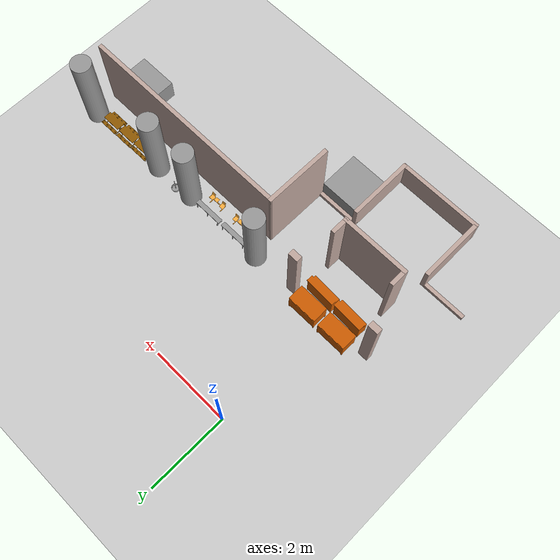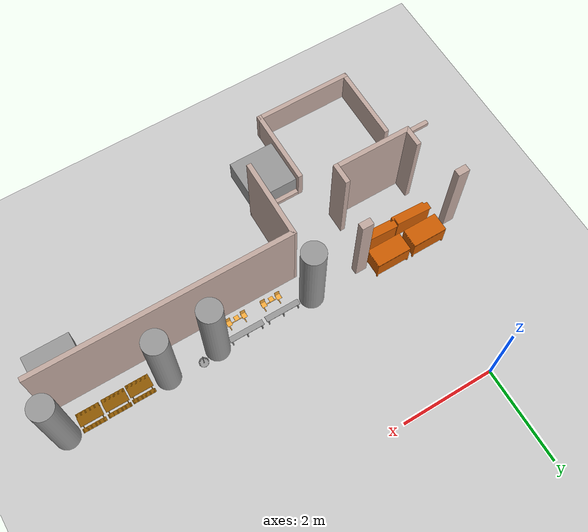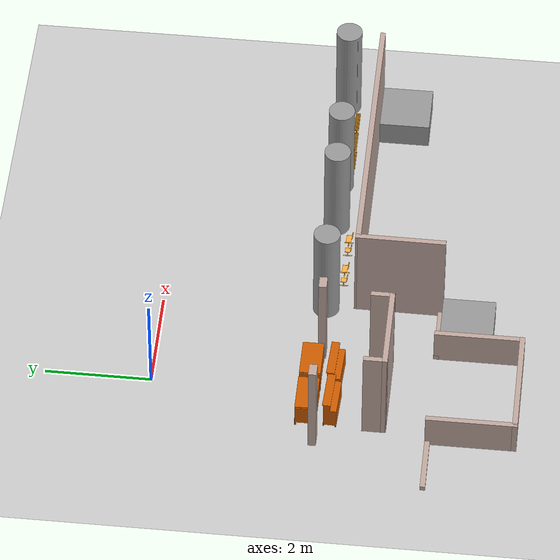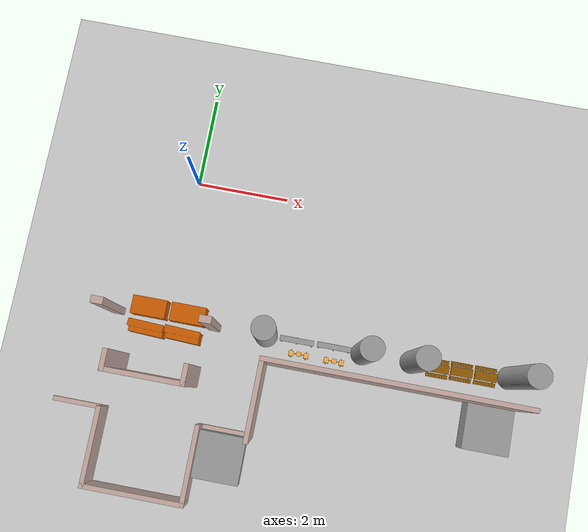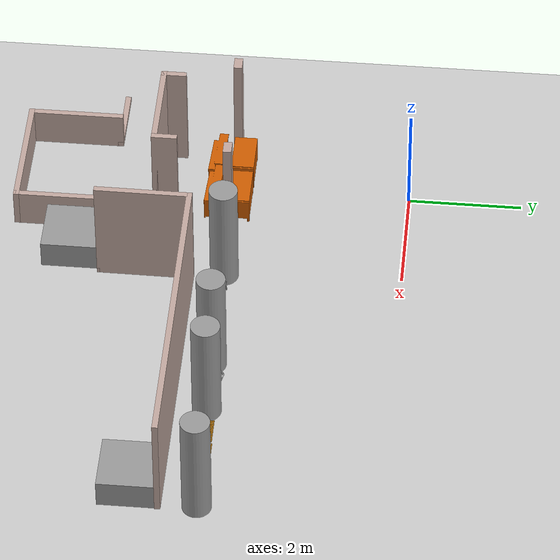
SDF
<sdf version="1.6">
 <world name="default">
  <model name="ground_plane">
   <static>1</static>
   <link name="link">
    <collision name="collision">
     <geometry><plane><normal>0 0 1</normal><size>100 100</size></plane></geometry>
     <surface>
      <contact><collide_bitmask>65535</collide_bitmask></contact>
      <friction><ode><mu>100</mu><mu2>50</mu2></ode></friction>
     </surface>
    </collision>
    <visual name="visual">
     <cast_shadows>0</cast_shadows>
     <geometry><plane><normal>0 0 1</normal><size>100 100</size></plane></geometry>
     <material>
      <script><uri>file://media/materials/scripts/gazebo.material</uri><name>Gazebo/Grey</name></script>
     </material>
    </visual>
   </link>
  </model>
  <model name="gedung_p">
   <pose>2.96636 -2.09069 0 0 -0 0</pose>
   <link name="Wall_191">
    <collision name="Wall_191_Collision">
     <geometry><box><size>5.44985 0.1 2</size></box></geometry>
     <pose>0 0 1 0 -0 0</pose>
    </collision>
    <visual name="Wall_191_Visual">
     <pose>0 0 1 0 -0 0</pose>
     <geometry><box><size>5.44985 0.1 2</size></box></geometry>
     <material>
      <script><uri>file://media/materials/scripts/gazebo.material</uri><name>Gazebo/Grey</name></script>
      <ambient>0.760784 0.662745 0.627451 1</ambient>
     </material>
     <meta><layer>0</layer></meta>
    </visual>
    <pose>1.92549 -1.5742 0 0 -0 3.14159</pose>
   </link>
   <link name="Wall_192">
    <collision name="Wall_192_Collision">
     <geometry><box><size>1.70004 0.1 2</size></box></geometry>
     <pose>0 0 1 0 -0 0</pose>
    </collision>
    <visual name="Wall_192_Visual">
     <pose>0 0 1 0 -0 0</pose>
     <geometry><box><size>1.70004 0.1 2</size></box></geometry>
     <material>
      <script><uri>file://media/materials/scripts/gazebo.material</uri><name>Gazebo/Grey</name></script>
      <ambient>0.760784 0.662745 0.627451 1</ambient>
     </material>
     <meta><layer>0</layer></meta>
    </visual>
    <pose>-0.755012 -2.37419 0 0 -0 -1.57767</pose>
   </link>
   <link name="Wall_194">
    <collision name="Wall_194_Collision">
     <geometry><box><size>1.2 0.1 0.1</size></box></geometry>
     <pose>0 0 0.05 0 -0 0</pose>
    </collision>
    <visual name="Wall_194_Visual">
     <pose>0 0 0.05 0 -0 0</pose>
     <geometry><box><size>1.2 0.1 0.1</size></box></geometry>
     <material>
      <script><uri>file://media/materials/scripts/gazebo.material</uri><name>Gazebo/Grey</name></script>
      <ambient>0.760784 0.662745 0.627451 1</ambient>
     </material>
     <meta><layer>0</layer></meta>
    </visual>
    <pose>-1.31051 -3.1742 0 0 -0 3.14159</pose>
   </link>
   <link name="Wall_195">
    <collision name="Wall_195_Collision">
     <geometry><box><size>1.7 0.1 0.7</size></box></geometry>
     <pose>0 0 0.35 0 -0 0</pose>
    </collision>
    <visual name="Wall_195_Visual">
     <pose>0 0 0.35 0 -0 0</pose>
     <geometry><box><size>1.7 0.1 0.7</size></box></geometry>
     <material>
      <script><uri>file://media/materials/scripts/gazebo.material</uri><name>Gazebo/Grey</name></script>
      <ambient>0.760784 0.662745 0.627451 1</ambient>
     </material>
     <meta><layer>0</layer></meta>
    </visual>
    <pose>-1.86051 -3.97419 0 0 -0 -1.5708</pose>
   </link>
   <link name="Wall_196">
    <collision name="Wall_196_Collision">
     <geometry><box><size>2.2 0.1 0.7</size></box></geometry>
     <pose>0 0 0.35 0 -0 0</pose>
    </collision>
    <visual name="Wall_196_Visual">
     <pose>0 0 0.35 0 -0 0</pose>
     <geometry><box><size>2.2 0.1 0.7</size></box></geometry>
     <material>
      <script><uri>file://media/materials/scripts/gazebo.material</uri><name>Gazebo/Grey</name></script>
      <ambient>0.760784 0.662745 0.627451 1</ambient>
     </material>
     <meta><layer>0</layer></meta>
    </visual>
    <pose>-2.91051 -4.77419 0 0 -0 3.14159</pose>
   </link>
   <link name="Wall_197">
    <collision name="Wall_197_Collision">
     <geometry><box><size>1.7 0.1 0.7</size></box></geometry>
     <pose>0 0 0.35 0 -0 0</pose>
    </collision>
    <visual name="Wall_197_Visual">
     <pose>0 0 0.35 0 -0 0</pose>
     <geometry><box><size>1.7 0.1 0.7</size></box></geometry>
     <material>
      <script><uri>file://media/materials/scripts/gazebo.material</uri><name>Gazebo/Grey</name></script>
      <ambient>0.760784 0.662745 0.627451 1</ambient>
     </material>
     <meta><layer>0</layer></meta>
    </visual>
    <pose>-3.96051 -3.97419 0 0 -0 1.5708</pose>
   </link>
   <link name="Wall_198">
    <collision name="Wall_198_Collision">
     <geometry><box><size>1.2 0.1 0.1</size></box></geometry>
     <pose>0 0 0.05 0 -0 0</pose>
    </collision>
    <visual name="Wall_198_Visual">
     <pose>0 0 0.05 0 -0 0</pose>
     <geometry><box><size>1.2 0.1 0.1</size></box></geometry>
     <material>
      <script><uri>file://media/materials/scripts/gazebo.material</uri><name>Gazebo/Grey</name></script>
      <ambient>0.760784 0.662745 0.627451 1</ambient>
     </material>
     <meta><layer>0</layer></meta>
    </visual>
    <pose>-4.51051 -3.1742 0 0 -0 3.14159</pose>
   </link>
   <link name="Wall_201">
    <collision name="Wall_201_Collision">
     <geometry><box><size>0.45 0.1 2</size></box></geometry>
     <pose>0 0 1 0 -0 0</pose>
    </collision>
    <visual name="Wall_201_Visual">
     <pose>0 0 1 0 -0 0</pose>
     <geometry><box><size>0.45 0.1 2</size></box></geometry>
     <material>
      <script><uri>file://media/materials/scripts/gazebo.material</uri><name>Gazebo/Grey</name></script>
      <ambient>0.760784 0.662745 0.627451 1</ambient>
     </material>
     <meta><layer>0</layer></meta>
    </visual>
    <pose>-3.75851 -2.16319 0 0 -0 -1.5708</pose>
   </link>
   <link name="Wall_202">
    <collision name="Wall_202_Collision">
     <geometry><box><size>1.7 0.1 2</size></box></geometry>
     <pose>0 0 1 0 -0 0</pose>
    </collision>
    <visual name="Wall_202_Visual">
     <pose>0 0 1 0 -0 0</pose>
     <geometry><box><size>1.7 0.1 2</size></box></geometry>
     <material>
      <script><uri>file://media/materials/scripts/gazebo.material</uri><name>Gazebo/Grey</name></script>
      <ambient>0.760784 0.662745 0.627451 1</ambient>
     </material>
     <meta><layer>0</layer></meta>
    </visual>
    <pose>-2.95851 -2.33819 0 0 -0 0</pose>
   </link>
   <link name="Wall_203">
    <collision name="Wall_203_Collision">
     <geometry><box><size>0.450476 0.1 2</size></box></geometry>
     <pose>0 0 1 0 -0 0</pose>
    </collision>
    <visual name="Wall_203_Visual">
     <pose>0 0 1 0 -0 0</pose>
     <geometry><box><size>0.450476 0.1 2</size></box></geometry>
     <material>
      <script><uri>file://media/materials/scripts/gazebo.material</uri><name>Gazebo/Grey</name></script>
      <ambient>0.760784 0.662745 0.627451 1</ambient>
     </material>
     <meta><layer>0</layer></meta>
    </visual>
    <pose>-2.15851 -2.16319 0 0 -0 1.5708</pose>
   </link>
   <link name="Wall_233">
    <collision name="Wall_233_Collision">
     <geometry><box><size>0.260396 0.2 2</size></box></geometry>
     <pose>0 0 1 0 -0 0</pose>
    </collision>
    <visual name="Wall_233_Visual">
     <pose>0 0 1 0 -0 0</pose>
     <geometry><box><size>0.260396 0.2 2</size></box></geometry>
     <material>
      <script><uri>file://media/materials/scripts/gazebo.material</uri><name>Gazebo/Grey</name></script>
      <ambient>0.760784 0.662745 0.627451 1</ambient>
     </material>
     <meta><layer>0</layer></meta>
    </visual>
    <pose>-0.860454 -1.01152 0 0 -0 0.09066</pose>
   </link>
   <link name="Wall_235">
    <collision name="Wall_235_Collision">
     <geometry><box><size>0.298575 0.2 2</size></box></geometry>
     <pose>0 0 1 0 -0 0</pose>
    </collision>
    <visual name="Wall_235_Visual">
     <pose>0 0 1 0 -0 0</pose>
     <geometry><box><size>0.298575 0.2 2</size></box></geometry>
     <material>
      <script><uri>file://media/materials/scripts/gazebo.material</uri><name>Gazebo/Grey</name></script>
      <ambient>0.760784 0.662745 0.627451 1</ambient>
     </material>
     <meta><layer>0</layer></meta>
    </visual>
    <pose>1.29119 -1.02245 0 0 -0 -0.055499</pose>
   </link>
   <link name="Wall_237">
    <collision name="Wall_237_Collision">
     <geometry><box><size>0.292956 0.2 2</size></box></geometry>
     <pose>0 0 1 0 -0 0</pose>
    </collision>
    <visual name="Wall_237_Visual">
     <pose>0 0 1 0 -0 0</pose>
     <geometry><box><size>0.292956 0.2 2</size></box></geometry>
     <material>
      <script><uri>file://media/materials/scripts/gazebo.material</uri><name>Gazebo/Grey</name></script>
      <ambient>0.760784 0.662745 0.627451 1</ambient>
     </material>
     <meta><layer>0</layer></meta>
    </visual>
    <pose>2.36565 -1.02792 0 0 -0 -3.08284</pose>
   </link>
   <link name="Wall_239">
    <collision name="Wall_239_Collision">
     <geometry><box><size>0.309905 0.2 2</size></box></geometry>
     <pose>0 0 1 0 -0 0</pose>
    </collision>
    <visual name="Wall_239_Visual">
     <pose>0 0 1 0 -0 0</pose>
     <geometry><box><size>0.309905 0.2 2</size></box></geometry>
     <material>
      <script><uri>file://media/materials/scripts/gazebo.material</uri><name>Gazebo/Grey</name></script>
      <ambient>0.760784 0.662745 0.627451 1</ambient>
     </material>
     <meta><layer>0</layer></meta>
    </visual>
    <pose>4.51183 -1.00878 0 0 -0 0</pose>
   </link>
   <link name="Wall_285">
    <collision name="Wall_285_Collision">
     <geometry><box><size>0.25 0.15 2</size></box></geometry>
     <pose>0 0 1 0 -0 0</pose>
    </collision>
    <visual name="Wall_285_Visual">
     <pose>0 0 1 0 -0 0</pose>
     <geometry><box><size>0.25 0.15 2</size></box></geometry>
     <material>
      <script><uri>file://media/materials/scripts/gazebo.material</uri><name>Gazebo/Grey</name></script>
      <ambient>0.760784 0.662745 0.627451 1</ambient>
     </material>
     <meta><layer>0</layer></meta>
    </visual>
    <pose>-4.12951 -1.05419 0 0 -0 0</pose>
   </link>
   <link name="Wall_287">
    <collision name="Wall_287_Collision">
     <geometry><box><size>0.25 0.15 2</size></box></geometry>
     <pose>0 0 1 0 -0 0</pose>
    </collision>
    <visual name="Wall_287_Visual">
     <pose>0 0 1 0 -0 0</pose>
     <geometry><box><size>0.25 0.15 2</size></box></geometry>
     <material>
      <script><uri>file://media/materials/scripts/gazebo.material</uri><name>Gazebo/Grey</name></script>
      <ambient>0.760784 0.662745 0.627451 1</ambient>
     </material>
     <meta><layer>0</layer></meta>
    </visual>
    <pose>-1.97751 -1.0352 0 0 -0 0</pose>
   </link>
   <static>1</static>
  </model>
  <model name="tiang_besar_21">
   <link name="link_0">
    <inertial>
     <mass>1</mass>
     <inertia>
      <ixx>0.166667</ixx>
      <ixy>0</ixy>
      <ixz>0</ixz>
      <iyy>0.166667</iyy>
      <iyz>0</iyz>
      <izz>0.166667</izz>
     </inertia>
    </inertial>
    <pose>0.080543 -0.031124 0 0 -0 0</pose>
    <visual name="visual">
     <geometry>
      <mesh><uri>/home/thardi/Gazebo Objek/cylinder sedang.dae</uri><scale>1 1 1.15</scale></mesh>
     </geometry>
     <material>
      <lighting>1</lighting>
      <script><uri>file://media/materials/scripts/gazebo.material</uri><name>Gazebo/Grey</name></script>
      <shader type="vertex"><normal_map>__default__</normal_map></shader>
      <ambient>0.3 0.3 0.3 1</ambient>
      <diffuse>0.7 0.7 0.7 1</diffuse>
      <specular>0.01 0.01 0.01 1</specular>
      <emissive>0 0 0 1</emissive>
     </material>
    </visual>
    <collision name="collision">
     <geometry>
      <mesh><uri>/home/thardi/Gazebo Objek/cylinder sedang.dae</uri><scale>1 1 1.15</scale></mesh>
     </geometry>
     <surface>
      <friction>
       <ode><mu>1.15</mu><mu2>1</mu2><fdir1>0 0 0</fdir1><slip1>0</slip1><slip2>0</slip2></ode>
       <torsional>
        <coefficient>1</coefficient>
        <patch_radius>0</patch_radius>
        <surface_radius>0</surface_radius>
        <use_patch_radius>1</use_patch_radius>
        <ode><slip>0</slip></ode>
       </torsional>
      </friction>
      <bounce><restitution_coefficient>0</restitution_coefficient><threshold>1e+06</threshold></bounce>
      <contact>
       <collide_without_contact>0</collide_without_contact>
       <collide_without_contact_bitmask>1</collide_without_contact_bitmask>
       <collide_bitmask>1</collide_bitmask>
       <ode>
        <soft_cfm>0</soft_cfm>
        <soft_erp>0.2</soft_erp>
        <kp>1e+13</kp>
        <kd>1</kd>
        <max_vel>0.01</max_vel>
        <min_depth>0</min_depth>
       </ode>
       <bullet>
        <split_impulse>1</split_impulse>
        <split_impulse_penetration_threshold>-0.01</split_impulse_penetration_threshold>
        <soft_cfm>0</soft_cfm>
        <soft_erp>0.2</soft_erp>
        <kp>1e+13</kp>
        <kd>1</kd>
       </bullet>
      </contact>
     </surface>
    </collision>
   </link>
   <static>1</static>
   <pose>2.05354 -3.05864 0 0 -0 0</pose>
  </model>
  <model name="tiang_besar_40">
   <link name="link_0">
    <inertial>
     <mass>1</mass>
     <inertia>
      <ixx>0.166667</ixx>
      <ixy>0</ixy>
      <ixz>0</ixz>
      <iyy>0.166667</iyy>
      <iyz>0</iyz>
      <izz>0.166667</izz>
     </inertia>
    </inertial>
    <pose>0.080543 -0.031124 0 0 -0 0</pose>
    <visual name="visual">
     <geometry>
      <mesh><uri>/home/thardi/Gazebo Objek/cylinder sedang.dae</uri><scale>1 1 1.15</scale></mesh>
     </geometry>
     <material>
      <lighting>1</lighting>
      <script><uri>file://media/materials/scripts/gazebo.material</uri><name>Gazebo/Grey</name></script>
      <shader type="vertex"><normal_map>__default__</normal_map></shader>
      <ambient>0.3 0.3 0.3 1</ambient>
      <diffuse>0.7 0.7 0.7 1</diffuse>
      <specular>0.01 0.01 0.01 1</specular>
      <emissive>0 0 0 1</emissive>
     </material>
    </visual>
    <collision name="collision">
     <geometry>
      <mesh><uri>/home/thardi/Gazebo Objek/cylinder sedang.dae</uri><scale>1 1 1.15</scale></mesh>
     </geometry>
     <surface>
      <friction>
       <ode><mu>1.15</mu><mu2>1</mu2><fdir1>0 0 0</fdir1><slip1>0</slip1><slip2>0</slip2></ode>
       <torsional>
        <coefficient>1</coefficient>
        <patch_radius>0</patch_radius>
        <surface_radius>0</surface_radius>
        <use_patch_radius>1</use_patch_radius>
        <ode><slip>0</slip></ode>
       </torsional>
      </friction>
      <bounce><restitution_coefficient>0</restitution_coefficient><threshold>1e+06</threshold></bounce>
      <contact>
       <collide_without_contact>0</collide_without_contact>
       <collide_without_contact_bitmask>1</collide_without_contact_bitmask>
       <collide_bitmask>1</collide_bitmask>
       <ode>
        <soft_cfm>0</soft_cfm>
        <soft_erp>0.2</soft_erp>
        <kp>1e+13</kp>
        <kd>1</kd>
        <max_vel>0.01</max_vel>
        <min_depth>0</min_depth>
       </ode>
       <bullet>
        <split_impulse>1</split_impulse>
        <split_impulse_penetration_threshold>-0.01</split_impulse_penetration_threshold>
        <soft_cfm>0</soft_cfm>
        <soft_erp>0.2</soft_erp>
        <kp>1e+13</kp>
        <kd>1</kd>
       </bullet>
      </contact>
     </surface>
    </collision>
   </link>
   <static>1</static>
   <pose>4.18654 -3.05832 0 0 -0 0</pose>
  </model>
  <model name="tiang_besar_41">
   <link name="link_0">
    <inertial>
     <mass>1</mass>
     <inertia>
      <ixx>0.166667</ixx>
      <ixy>0</ixy>
      <ixz>0</ixz>
      <iyy>0.166667</iyy>
      <iyz>0</iyz>
      <izz>0.166667</izz>
     </inertia>
    </inertial>
    <pose>0.080543 -0.031124 0 0 -0 0</pose>
    <visual name="visual">
     <geometry>
      <mesh><uri>/home/thardi/Gazebo Objek/cylinder sedang.dae</uri><scale>1 1 1.15</scale></mesh>
     </geometry>
     <material>
      <lighting>1</lighting>
      <script><uri>file://media/materials/scripts/gazebo.material</uri><name>Gazebo/Grey</name></script>
      <shader type="vertex"><normal_map>__default__</normal_map></shader>
      <ambient>0.3 0.3 0.3 1</ambient>
      <diffuse>0.7 0.7 0.7 1</diffuse>
      <specular>0.01 0.01 0.01 1</specular>
      <emissive>0 0 0 1</emissive>
     </material>
    </visual>
    <collision name="collision">
     <geometry>
      <mesh><uri>/home/thardi/Gazebo Objek/cylinder sedang.dae</uri><scale>1 1 1.15</scale></mesh>
     </geometry>
     <surface>
      <friction>
       <ode><mu>1.15</mu><mu2>1</mu2><fdir1>0 0 0</fdir1><slip1>0</slip1><slip2>0</slip2></ode>
       <torsional>
        <coefficient>1</coefficient>
        <patch_radius>0</patch_radius>
        <surface_radius>0</surface_radius>
        <use_patch_radius>1</use_patch_radius>
        <ode><slip>0</slip></ode>
       </torsional>
      </friction>
      <bounce><restitution_coefficient>0</restitution_coefficient><threshold>1e+06</threshold></bounce>
      <contact>
       <collide_without_contact>0</collide_without_contact>
       <collide_without_contact_bitmask>1</collide_without_contact_bitmask>
       <collide_bitmask>1</collide_bitmask>
       <ode>
        <soft_cfm>0</soft_cfm>
        <soft_erp>0.2</soft_erp>
        <kp>1e+13</kp>
        <kd>1</kd>
        <max_vel>0.01</max_vel>
        <min_depth>0</min_depth>
       </ode>
       <bullet>
        <split_impulse>1</split_impulse>
        <split_impulse_penetration_threshold>-0.01</split_impulse_penetration_threshold>
        <soft_cfm>0</soft_cfm>
        <soft_erp>0.2</soft_erp>
        <kp>1e+13</kp>
        <kd>1</kd>
       </bullet>
      </contact>
     </surface>
    </collision>
   </link>
   <static>1</static>
   <pose>5.27354 -3.03883 0 0 -0 0</pose>
  </model>
  <model name="tiang_besar_45">
   <link name="link_0">
    <inertial>
     <mass>1</mass>
     <inertia>
      <ixx>0.166667</ixx>
      <ixy>0</ixy>
      <ixz>0</ixz>
      <iyy>0.166667</iyy>
      <iyz>0</iyz>
      <izz>0.166667</izz>
     </inertia>
    </inertial>
    <pose>0.080543 -0.031124 0 0 -0 0</pose>
    <visual name="visual">
     <geometry>
      <mesh><uri>/home/thardi/Gazebo Objek/cylinder sedang.dae</uri><scale>1 1 1.15</scale></mesh>
     </geometry>
     <material>
      <lighting>1</lighting>
      <script><uri>file://media/materials/scripts/gazebo.material</uri><name>Gazebo/Grey</name></script>
      <shader type="vertex"><normal_map>__default__</normal_map></shader>
      <ambient>0.3 0.3 0.3 1</ambient>
      <diffuse>0.7 0.7 0.7 1</diffuse>
      <specular>0.01 0.01 0.01 1</specular>
      <emissive>0 0 0 1</emissive>
     </material>
    </visual>
    <collision name="collision">
     <geometry>
      <mesh><uri>/home/thardi/Gazebo Objek/cylinder sedang.dae</uri><scale>1 1 1.15</scale></mesh>
     </geometry>
     <surface>
      <friction>
       <ode><mu>1.15</mu><mu2>1</mu2><fdir1>0 0 0</fdir1><slip1>0</slip1><slip2>0</slip2></ode>
       <torsional>
        <coefficient>1</coefficient>
        <patch_radius>0</patch_radius>
        <surface_radius>0</surface_radius>
        <use_patch_radius>1</use_patch_radius>
        <ode><slip>0</slip></ode>
       </torsional>
      </friction>
      <bounce><restitution_coefficient>0</restitution_coefficient><threshold>1e+06</threshold></bounce>
      <contact>
       <collide_without_contact>0</collide_without_contact>
       <collide_without_contact_bitmask>1</collide_without_contact_bitmask>
       <collide_bitmask>1</collide_bitmask>
       <ode>
        <soft_cfm>0</soft_cfm>
        <soft_erp>0.2</soft_erp>
        <kp>1e+13</kp>
        <kd>1</kd>
        <max_vel>0.01</max_vel>
        <min_depth>0</min_depth>
       </ode>
       <bullet>
        <split_impulse>1</split_impulse>
        <split_impulse_penetration_threshold>-0.01</split_impulse_penetration_threshold>
        <soft_cfm>0</soft_cfm>
        <soft_erp>0.2</soft_erp>
        <kp>1e+13</kp>
        <kd>1</kd>
       </bullet>
      </contact>
     </surface>
    </collision>
   </link>
   <static>1</static>
   <pose>7.42013 -2.988 0 0 -0 0</pose>
  </model>
  <model name="kursi_putih_7">
   <link name="link_3">
    <inertial>
     <mass>1</mass>
     <inertia>
      <ixx>0.166667</ixx>
      <ixy>0</ixy>
      <ixz>0</ixz>
      <iyy>0.166667</iyy>
      <iyz>0</iyz>
      <izz>0.166667</izz>
     </inertia>
    </inertial>
    <visual name="visual">
     <geometry>
      <mesh><uri>/home/thardi/Gazebo Objek/kursi putih.dae</uri><scale>0.15 0.15 0.15</scale></mesh>
     </geometry>
     <material>
      <lighting>1</lighting>
      <script><uri>file://media/materials/scripts/gazebo.material</uri><name>Gazebo/Grey</name></script>
      <shader type="vertex"><normal_map>__default__</normal_map></shader>
      <ambient>1 1 1 1</ambient>
      <diffuse>1 1 1 1</diffuse>
      <specular>1 1 1 1</specular>
      <emissive>1 1 1 1</emissive>
     </material>
    </visual>
    <collision name="collision">
     <geometry>
      <mesh><uri>/home/thardi/Gazebo Objek/kursi putih.dae</uri><scale>0.15 0.15 0.15</scale></mesh>
     </geometry>
     <surface>
      <friction>
       <ode><mu>1</mu><mu2>1</mu2><fdir1>0 0 0</fdir1><slip1>0</slip1><slip2>0</slip2></ode>
       <torsional>
        <coefficient>1</coefficient>
        <patch_radius>0</patch_radius>
        <surface_radius>0</surface_radius>
        <use_patch_radius>1</use_patch_radius>
        <ode><slip>0</slip></ode>
       </torsional>
      </friction>
      <bounce><restitution_coefficient>0</restitution_coefficient><threshold>1e+06</threshold></bounce>
      <contact>
       <collide_without_contact>0</collide_without_contact>
       <collide_without_contact_bitmask>1</collide_without_contact_bitmask>
       <collide_bitmask>1</collide_bitmask>
       <ode>
        <soft_cfm>0</soft_cfm>
        <soft_erp>0.2</soft_erp>
        <kp>1e+13</kp>
        <kd>1</kd>
        <max_vel>0.01</max_vel>
        <min_depth>0</min_depth>
       </ode>
       <bullet>
        <split_impulse>1</split_impulse>
        <split_impulse_penetration_threshold>-0.01</split_impulse_penetration_threshold>
        <soft_cfm>0</soft_cfm>
        <soft_erp>0.2</soft_erp>
        <kp>1e+13</kp>
        <kd>1</kd>
       </bullet>
      </contact>
     </surface>
    </collision>
   </link>
   <static>1</static>
   <pose>2.81307 -3.08052 0 0 -0 0</pose>
  </model>
  <model name="kursi_putih_8">
   <link name="link_3">
    <inertial>
     <mass>1</mass>
     <inertia>
      <ixx>0.166667</ixx>
      <ixy>0</ixy>
      <ixz>0</ixz>
      <iyy>0.166667</iyy>
      <iyz>0</iyz>
      <izz>0.166667</izz>
     </inertia>
    </inertial>
    <visual name="visual">
     <geometry>
      <mesh><uri>/home/thardi/Gazebo Objek/kursi putih.dae</uri><scale>0.15 0.15 0.15</scale></mesh>
     </geometry>
     <material>
      <lighting>1</lighting>
      <script><uri>file://media/materials/scripts/gazebo.material</uri><name>Gazebo/Grey</name></script>
      <shader type="vertex"><normal_map>__default__</normal_map></shader>
      <ambient>1 1 1 1</ambient>
      <diffuse>1 1 1 1</diffuse>
      <specular>1 1 1 1</specular>
      <emissive>1 1 1 1</emissive>
     </material>
    </visual>
    <collision name="collision">
     <geometry>
      <mesh><uri>/home/thardi/Gazebo Objek/kursi putih.dae</uri><scale>0.15 0.15 0.15</scale></mesh>
     </geometry>
     <surface>
      <friction>
       <ode><mu>1</mu><mu2>1</mu2><fdir1>0 0 0</fdir1><slip1>0</slip1><slip2>0</slip2></ode>
       <torsional>
        <coefficient>1</coefficient>
        <patch_radius>0</patch_radius>
        <surface_radius>0</surface_radius>
        <use_patch_radius>1</use_patch_radius>
        <ode><slip>0</slip></ode>
       </torsional>
      </friction>
      <bounce><restitution_coefficient>0</restitution_coefficient><threshold>1e+06</threshold></bounce>
      <contact>
       <collide_without_contact>0</collide_without_contact>
       <collide_without_contact_bitmask>1</collide_without_contact_bitmask>
       <collide_bitmask>1</collide_bitmask>
       <ode>
        <soft_cfm>0</soft_cfm>
        <soft_erp>0.2</soft_erp>
        <kp>1e+13</kp>
        <kd>1</kd>
        <max_vel>0.01</max_vel>
        <min_depth>0</min_depth>
       </ode>
       <bullet>
        <split_impulse>1</split_impulse>
        <split_impulse_penetration_threshold>-0.01</split_impulse_penetration_threshold>
        <soft_cfm>0</soft_cfm>
        <soft_erp>0.2</soft_erp>
        <kp>1e+13</kp>
        <kd>1</kd>
       </bullet>
      </contact>
     </surface>
    </collision>
   </link>
   <static>1</static>
   <pose>3.63309 -3.06913 0 0 -0 0</pose>
  </model>
  <model name="kursi_sambung_2_3">
   <link name="link_4">
    <inertial>
     <mass>1</mass>
     <inertia>
      <ixx>0.166667</ixx>
      <ixy>0</ixy>
      <ixz>0</ixz>
      <iyy>0.166667</iyy>
      <iyz>0</iyz>
      <izz>0.166667</izz>
     </inertia>
    </inertial>
    <visual name="visual">
     <geometry>
      <mesh><uri>/home/thardi/Gazebo Objek/kursi sambung 2.dae</uri><scale>0.07 0.07 0.07</scale></mesh>
     </geometry>
     <material>
      <lighting>1</lighting>
      <script><uri>file://media/materials/scripts/gazebo.material</uri><name>Gazebo/Grey</name></script>
      <shader type="vertex"><normal_map>__default__</normal_map></shader>
      <ambient>0.988 0.686 0.243 1</ambient>
      <diffuse>0.988 0.686 0.243 1</diffuse>
      <specular>0.988 0.686 0.243 1</specular>
      <emissive>0.988 0.686 0.243 1</emissive>
     </material>
    </visual>
    <collision name="collision">
     <geometry>
      <mesh><uri>/home/thardi/Gazebo Objek/kursi sambung 2.dae</uri><scale>0.07 0.07 0.07</scale></mesh>
     </geometry>
     <surface>
      <friction>
       <ode><mu>1</mu><mu2>1</mu2><fdir1>0 0 0</fdir1><slip1>0</slip1><slip2>0</slip2></ode>
       <torsional>
        <coefficient>1</coefficient>
        <patch_radius>0</patch_radius>
        <surface_radius>0</surface_radius>
        <use_patch_radius>1</use_patch_radius>
        <ode><slip>0</slip></ode>
       </torsional>
      </friction>
      <bounce><restitution_coefficient>0</restitution_coefficient><threshold>1e+06</threshold></bounce>
      <contact>
       <collide_without_contact>0</collide_without_contact>
       <collide_without_contact_bitmask>1</collide_without_contact_bitmask>
       <collide_bitmask>1</collide_bitmask>
       <ode>
        <soft_cfm>0</soft_cfm>
        <soft_erp>0.2</soft_erp>
        <kp>1e+13</kp>
        <kd>1</kd>
        <max_vel>0.01</max_vel>
        <min_depth>0</min_depth>
       </ode>
       <bullet>
        <split_impulse>1</split_impulse>
        <split_impulse_penetration_threshold>-0.01</split_impulse_penetration_threshold>
        <soft_cfm>0</soft_cfm>
        <soft_erp>0.2</soft_erp>
        <kp>1e+13</kp>
        <kd>1</kd>
       </bullet>
      </contact>
     </surface>
    </collision>
   </link>
   <static>1</static>
   <pose>2.68021 -3.27813 0 0 -0 0</pose>
  </model>
  <model name="kursi_sambung_2_4">
   <link name="link_4">
    <inertial>
     <mass>1</mass>
     <inertia>
      <ixx>0.166667</ixx>
      <ixy>0</ixy>
      <ixz>0</ixz>
      <iyy>0.166667</iyy>
      <iyz>0</iyz>
      <izz>0.166667</izz>
     </inertia>
    </inertial>
    <visual name="visual">
     <geometry>
      <mesh><uri>/home/thardi/Gazebo Objek/kursi sambung 2.dae</uri><scale>0.07 0.07 0.07</scale></mesh>
     </geometry>
     <material>
      <lighting>1</lighting>
      <script><uri>file://media/materials/scripts/gazebo.material</uri><name>Gazebo/Grey</name></script>
      <shader type="vertex"><normal_map>__default__</normal_map></shader>
      <ambient>0.988 0.686 0.243 1</ambient>
      <diffuse>0.988 0.686 0.243 1</diffuse>
      <specular>0.988 0.686 0.243 1</specular>
      <emissive>0.988 0.686 0.243 1</emissive>
     </material>
    </visual>
    <collision name="collision">
     <geometry>
      <mesh><uri>/home/thardi/Gazebo Objek/kursi sambung 2.dae</uri><scale>0.07 0.07 0.07</scale></mesh>
     </geometry>
     <surface>
      <friction>
       <ode><mu>1</mu><mu2>1</mu2><fdir1>0 0 0</fdir1><slip1>0</slip1><slip2>0</slip2></ode>
       <torsional>
        <coefficient>1</coefficient>
        <patch_radius>0</patch_radius>
        <surface_radius>0</surface_radius>
        <use_patch_radius>1</use_patch_radius>
        <ode><slip>0</slip></ode>
       </torsional>
      </friction>
      <bounce><restitution_coefficient>0</restitution_coefficient><threshold>1e+06</threshold></bounce>
      <contact>
       <collide_without_contact>0</collide_without_contact>
       <collide_without_contact_bitmask>1</collide_without_contact_bitmask>
       <collide_bitmask>1</collide_bitmask>
       <ode>
        <soft_cfm>0</soft_cfm>
        <soft_erp>0.2</soft_erp>
        <kp>1e+13</kp>
        <kd>1</kd>
        <max_vel>0.01</max_vel>
        <min_depth>0</min_depth>
       </ode>
       <bullet>
        <split_impulse>1</split_impulse>
        <split_impulse_penetration_threshold>-0.01</split_impulse_penetration_threshold>
        <soft_cfm>0</soft_cfm>
        <soft_erp>0.2</soft_erp>
        <kp>1e+13</kp>
        <kd>1</kd>
       </bullet>
      </contact>
     </surface>
    </collision>
   </link>
   <static>1</static>
   <pose>3.45808 -3.28396 0 0 -0 0</pose>
  </model>
  <model name="kursi_piknik_7">
   <link name="link_2">
    <inertial>
     <mass>1</mass>
     <inertia>
      <ixx>0.166667</ixx>
      <ixy>0</ixy>
      <ixz>0</ixz>
      <iyy>0.166667</iyy>
      <iyz>0</iyz>
      <izz>0.166667</izz>
     </inertia>
    </inertial>
    <visual name="visual">
     <geometry>
      <mesh><uri>/home/thardi/Gazebo Objek/kursi piknik.dae</uri><scale>0.2 0.2 0.2</scale></mesh>
     </geometry>
     <material>
      <lighting>1</lighting>
      <script><uri>file://media/materials/scripts/gazebo.material</uri><name>Gazebo/Grey</name></script>
      <shader type="vertex"><normal_map>__default__</normal_map></shader>
      <ambient>0.561 0.349 0.008 1</ambient>
      <diffuse>0.561 0.349 0.008 1</diffuse>
      <specular>0.561 0.349 0.008 1</specular>
      <emissive>0.561 0.349 0.008 1</emissive>
     </material>
    </visual>
    <collision name="collision">
     <geometry>
      <mesh><uri>/home/thardi/Gazebo Objek/kursi piknik.dae</uri><scale>0.2 0.2 0.2</scale></mesh>
     </geometry>
     <surface>
      <friction>
       <ode><mu>1</mu><mu2>1</mu2><fdir1>0 0 0</fdir1><slip1>0</slip1><slip2>0</slip2></ode>
       <torsional>
        <coefficient>1</coefficient>
        <patch_radius>0</patch_radius>
        <surface_radius>0</surface_radius>
        <use_patch_radius>1</use_patch_radius>
        <ode><slip>0</slip></ode>
       </torsional>
      </friction>
      <bounce><restitution_coefficient>0</restitution_coefficient><threshold>1e+06</threshold></bounce>
      <contact>
       <collide_without_contact>0</collide_without_contact>
       <collide_without_contact_bitmask>1</collide_without_contact_bitmask>
       <collide_bitmask>1</collide_bitmask>
       <ode>
        <soft_cfm>0</soft_cfm>
        <soft_erp>0.2</soft_erp>
        <kp>1e+13</kp>
        <kd>1</kd>
        <max_vel>0.01</max_vel>
        <min_depth>0</min_depth>
       </ode>
       <bullet>
        <split_impulse>1</split_impulse>
        <split_impulse_penetration_threshold>-0.01</split_impulse_penetration_threshold>
        <soft_cfm>0</soft_cfm>
        <soft_erp>0.2</soft_erp>
        <kp>1e+13</kp>
        <kd>1</kd>
       </bullet>
      </contact>
     </surface>
    </collision>
   </link>
   <static>1</static>
   <pose>5.92176 -3.10733 0 0 -0 0</pose>
  </model>
  <model name="kursi_piknik_8">
   <link name="link_2">
    <inertial>
     <mass>1</mass>
     <inertia>
      <ixx>0.166667</ixx>
      <ixy>0</ixy>
      <ixz>0</ixz>
      <iyy>0.166667</iyy>
      <iyz>0</iyz>
      <izz>0.166667</izz>
     </inertia>
    </inertial>
    <visual name="visual">
     <geometry>
      <mesh><uri>/home/thardi/Gazebo Objek/kursi piknik.dae</uri><scale>0.2 0.2 0.2</scale></mesh>
     </geometry>
     <material>
      <lighting>1</lighting>
      <script><uri>file://media/materials/scripts/gazebo.material</uri><name>Gazebo/Grey</name></script>
      <shader type="vertex"><normal_map>__default__</normal_map></shader>
      <ambient>0.561 0.349 0.008 1</ambient>
      <diffuse>0.561 0.349 0.008 1</diffuse>
      <specular>0.561 0.349 0.008 1</specular>
      <emissive>0.561 0.349 0.008 1</emissive>
     </material>
    </visual>
    <collision name="collision">
     <geometry>
      <mesh><uri>/home/thardi/Gazebo Objek/kursi piknik.dae</uri><scale>0.2 0.2 0.2</scale></mesh>
     </geometry>
     <surface>
      <friction>
       <ode><mu>1</mu><mu2>1</mu2><fdir1>0 0 0</fdir1><slip1>0</slip1><slip2>0</slip2></ode>
       <torsional>
        <coefficient>1</coefficient>
        <patch_radius>0</patch_radius>
        <surface_radius>0</surface_radius>
        <use_patch_radius>1</use_patch_radius>
        <ode><slip>0</slip></ode>
       </torsional>
      </friction>
      <bounce><restitution_coefficient>0</restitution_coefficient><threshold>1e+06</threshold></bounce>
      <contact>
       <collide_without_contact>0</collide_without_contact>
       <collide_without_contact_bitmask>1</collide_without_contact_bitmask>
       <collide_bitmask>1</collide_bitmask>
       <ode>
        <soft_cfm>0</soft_cfm>
        <soft_erp>0.2</soft_erp>
        <kp>1e+13</kp>
        <kd>1</kd>
        <max_vel>0.01</max_vel>
        <min_depth>0</min_depth>
       </ode>
       <bullet>
        <split_impulse>1</split_impulse>
        <split_impulse_penetration_threshold>-0.01</split_impulse_penetration_threshold>
        <soft_cfm>0</soft_cfm>
        <soft_erp>0.2</soft_erp>
        <kp>1e+13</kp>
        <kd>1</kd>
       </bullet>
      </contact>
     </surface>
    </collision>
   </link>
   <static>1</static>
   <pose>6.43684 -3.09429 0 0 -0 0</pose>
  </model>
  <model name="kursi_piknik_9">
   <link name="link_2">
    <inertial>
     <mass>1</mass>
     <inertia>
      <ixx>0.166667</ixx>
      <ixy>0</ixy>
      <ixz>0</ixz>
      <iyy>0.166667</iyy>
      <iyz>0</iyz>
      <izz>0.166667</izz>
     </inertia>
    </inertial>
    <visual name="visual">
     <geometry>
      <mesh><uri>/home/thardi/Gazebo Objek/kursi piknik.dae</uri><scale>0.2 0.2 0.2</scale></mesh>
     </geometry>
     <material>
      <lighting>1</lighting>
      <script><uri>file://media/materials/scripts/gazebo.material</uri><name>Gazebo/Grey</name></script>
      <shader type="vertex"><normal_map>__default__</normal_map></shader>
      <ambient>0.561 0.349 0.008 1</ambient>
      <diffuse>0.561 0.349 0.008 1</diffuse>
      <specular>0.561 0.349 0.008 1</specular>
      <emissive>0.561 0.349 0.008 1</emissive>
     </material>
    </visual>
    <collision name="collision">
     <geometry>
      <mesh><uri>/home/thardi/Gazebo Objek/kursi piknik.dae</uri><scale>0.2 0.2 0.2</scale></mesh>
     </geometry>
     <surface>
      <friction>
       <ode><mu>1</mu><mu2>1</mu2><fdir1>0 0 0</fdir1><slip1>0</slip1><slip2>0</slip2></ode>
       <torsional>
        <coefficient>1</coefficient>
        <patch_radius>0</patch_radius>
        <surface_radius>0</surface_radius>
        <use_patch_radius>1</use_patch_radius>
        <ode><slip>0</slip></ode>
       </torsional>
      </friction>
      <bounce><restitution_coefficient>0</restitution_coefficient><threshold>1e+06</threshold></bounce>
      <contact>
       <collide_without_contact>0</collide_without_contact>
       <collide_without_contact_bitmask>1</collide_without_contact_bitmask>
       <collide_bitmask>1</collide_bitmask>
       <ode>
        <soft_cfm>0</soft_cfm>
        <soft_erp>0.2</soft_erp>
        <kp>1e+13</kp>
        <kd>1</kd>
        <max_vel>0.01</max_vel>
        <min_depth>0</min_depth>
       </ode>
       <bullet>
        <split_impulse>1</split_impulse>
        <split_impulse_penetration_threshold>-0.01</split_impulse_penetration_threshold>
        <soft_cfm>0</soft_cfm>
        <soft_erp>0.2</soft_erp>
        <kp>1e+13</kp>
        <kd>1</kd>
       </bullet>
      </contact>
     </surface>
    </collision>
   </link>
   <static>1</static>
   <pose>6.96378 -3.08733 0 0 -0 0</pose>
  </model>
  <model name="pot_1">
   <link name="link_12">
    <inertial>
     <mass>1</mass>
     <inertia>
      <ixx>0.166667</ixx>
      <ixy>0</ixy>
      <ixz>0</ixz>
      <iyy>0.166667</iyy>
      <iyz>0</iyz>
      <izz>0.166667</izz>
     </inertia>
    </inertial>
    <visual name="visual">
     <geometry><mesh><uri>/home/thardi/Gazebo Objek/pot.dae</uri><scale>0.2 0.2 0.2</scale></mesh></geometry>
     <material>
      <lighting>1</lighting>
      <script><uri>file://media/materials/scripts/gazebo.material</uri><name>Gazebo/Grey</name></script>
      <shader type="vertex"><normal_map>__default__</normal_map></shader>
      <ambient>0.3 0.3 0.3 1</ambient>
      <diffuse>0.7 0.7 0.7 1</diffuse>
      <specular>0.01 0.01 0.01 1</specular>
      <emissive>0 0 0 1</emissive>
     </material>
    </visual>
    <collision name="collision">
     <geometry><mesh><uri>/home/thardi/Gazebo Objek/pot.dae</uri><scale>0.2 0.2 0.2</scale></mesh></geometry>
     <surface>
      <friction>
       <ode><mu>1</mu><mu2>1</mu2><fdir1>0 0 0</fdir1><slip1>0</slip1><slip2>0</slip2></ode>
       <torsional>
        <coefficient>1</coefficient>
        <patch_radius>0</patch_radius>
        <surface_radius>0</surface_radius>
        <use_patch_radius>1</use_patch_radius>
        <ode><slip>0</slip></ode>
       </torsional>
      </friction>
      <bounce><restitution_coefficient>0</restitution_coefficient><threshold>1e+06</threshold></bounce>
      <contact>
       <collide_without_contact>0</collide_without_contact>
       <collide_without_contact_bitmask>1</collide_without_contact_bitmask>
       <collide_bitmask>1</collide_bitmask>
       <ode>
        <soft_cfm>0</soft_cfm>
        <soft_erp>0.2</soft_erp>
        <kp>1e+13</kp>
        <kd>1</kd>
        <max_vel>0.01</max_vel>
        <min_depth>0</min_depth>
       </ode>
       <bullet>
        <split_impulse>1</split_impulse>
        <split_impulse_penetration_threshold>-0.01</split_impulse_penetration_threshold>
        <soft_cfm>0</soft_cfm>
        <soft_erp>0.2</soft_erp>
        <kp>1e+13</kp>
        <kd>1</kd>
       </bullet>
      </contact>
     </surface>
    </collision>
   </link>
   <static>1</static>
   <pose>4.53676 -2.84533 0 0 -0 0</pose>
  </model>
  <model name="blok_5">
   <link name="link_0">
    <inertial>
     <mass>1</mass>
     <inertia>
      <ixx>0.166667</ixx>
      <ixy>0</ixy>
      <ixz>0</ixz>
      <iyy>0.166667</iyy>
      <iyz>0</iyz>
      <izz>0.166667</izz>
     </inertia>
    </inertial>
    <visual name="visual">
     <geometry><box><size>1 1 1</size></box></geometry>
     <material>
      <lighting>1</lighting>
      <script><uri>file://media/materials/scripts/gazebo.material</uri><name>Gazebo/Grey</name></script>
      <shader type="vertex"><normal_map>__default__</normal_map></shader>
      <ambient>0.3 0.3 0.3 1</ambient>
      <diffuse>0.7 0.7 0.7 1</diffuse>
      <specular>0.01 0.01 0.01 1</specular>
      <emissive>0 0 0 1</emissive>
     </material>
    </visual>
    <collision name="collision">
     <geometry><box><size>1 1 1</size></box></geometry>
     <surface>
      <friction>
       <ode><mu>1</mu><mu2>1</mu2><fdir1>0 0 0</fdir1><slip1>0</slip1><slip2>0</slip2></ode>
       <torsional>
        <coefficient>1</coefficient>
        <patch_radius>0</patch_radius>
        <surface_radius>0</surface_radius>
        <use_patch_radius>1</use_patch_radius>
        <ode><slip>0</slip></ode>
       </torsional>
      </friction>
      <bounce><restitution_coefficient>0</restitution_coefficient><threshold>1e+06</threshold></bounce>
      <contact>
       <collide_without_contact>0</collide_without_contact>
       <collide_without_contact_bitmask>1</collide_without_contact_bitmask>
       <collide_bitmask>1</collide_bitmask>
       <ode>
        <soft_cfm>0</soft_cfm>
        <soft_erp>0.2</soft_erp>
        <kp>1e+13</kp>
        <kd>1</kd>
        <max_vel>0.01</max_vel>
        <min_depth>0</min_depth>
       </ode>
       <bullet>
        <split_impulse>1</split_impulse>
        <split_impulse_penetration_threshold>-0.01</split_impulse_penetration_threshold>
        <soft_cfm>0</soft_cfm>
        <soft_erp>0.2</soft_erp>
        <kp>1e+13</kp>
        <kd>1</kd>
       </bullet>
      </contact>
     </surface>
    </collision>
   </link>
   <static>1</static>
   <pose>7.09418 -4.18242 0 0 -0 0</pose>
  </model>
  <model name="blok_7">
   <link name="link_0">
    <inertial>
     <mass>1</mass>
     <inertia>
      <ixx>0.166667</ixx>
      <ixy>0</ixy>
      <ixz>0</ixz>
      <iyy>0.166667</iyy>
      <iyz>0</iyz>
      <izz>0.166667</izz>
     </inertia>
    </inertial>
    <visual name="visual">
     <geometry><box><size>1 1 1</size></box></geometry>
     <material>
      <lighting>1</lighting>
      <script><uri>file://media/materials/scripts/gazebo.material</uri><name>Gazebo/Grey</name></script>
      <shader type="vertex"><normal_map>__default__</normal_map></shader>
      <ambient>0.3 0.3 0.3 1</ambient>
      <diffuse>0.7 0.7 0.7 1</diffuse>
      <specular>0.01 0.01 0.01 1</specular>
      <emissive>0 0 0 1</emissive>
     </material>
    </visual>
    <collision name="collision">
     <geometry><box><size>1 1 1</size></box></geometry>
     <surface>
      <friction>
       <ode><mu>1</mu><mu2>1</mu2><fdir1>0 0 0</fdir1><slip1>0</slip1><slip2>0</slip2></ode>
       <torsional>
        <coefficient>1</coefficient>
        <patch_radius>0</patch_radius>
        <surface_radius>0</surface_radius>
        <use_patch_radius>1</use_patch_radius>
        <ode><slip>0</slip></ode>
       </torsional>
      </friction>
      <bounce><restitution_coefficient>0</restitution_coefficient><threshold>1e+06</threshold></bounce>
      <contact>
       <collide_without_contact>0</collide_without_contact>
       <collide_without_contact_bitmask>1</collide_without_contact_bitmask>
       <collide_bitmask>1</collide_bitmask>
       <ode>
        <soft_cfm>0</soft_cfm>
        <soft_erp>0.2</soft_erp>
        <kp>1e+13</kp>
        <kd>1</kd>
        <max_vel>0.01</max_vel>
        <min_depth>0</min_depth>
       </ode>
       <bullet>
        <split_impulse>1</split_impulse>
        <split_impulse_penetration_threshold>-0.01</split_impulse_penetration_threshold>
        <soft_cfm>0</soft_cfm>
        <soft_erp>0.2</soft_erp>
        <kp>1e+13</kp>
        <kd>1</kd>
       </bullet>
      </contact>
     </surface>
    </collision>
   </link>
   <static>1</static>
   <pose>1.65621 -5.80931 0 0 -0 0</pose>
  </model>
  <model name="meja_bawah_tangga">
   <link name="link_8">
    <inertial>
     <mass>1</mass>
     <inertia>
      <ixx>0.166667</ixx>
      <ixy>0</ixy>
      <ixz>0</ixz>
      <iyy>0.166667</iyy>
      <iyz>0</iyz>
      <izz>0.166667</izz>
     </inertia>
    </inertial>
    <visual name="visual">
     <geometry>
      <mesh><uri>/home/thardi/Gazebo Objek/meja bahwa tangga.dae</uri><scale>0.1 0.1 0.1</scale></mesh>
     </geometry>
     <material>
      <lighting>1</lighting>
      <script><uri>file://media/materials/scripts/gazebo.material</uri><name>Gazebo/Grey</name></script>
      <shader type="vertex"><normal_map>__default__</normal_map></shader>
      <ambient>0.808 0.361 0 1</ambient>
      <diffuse>0.808 0.361 0 1</diffuse>
      <specular>0.808 0.361 0 1</specular>
      <emissive>0.808 0.361 0 1</emissive>
     </material>
    </visual>
    <collision name="collision">
     <geometry>
      <mesh><uri>/home/thardi/Gazebo Objek/meja bahwa tangga.dae</uri><scale>0.1 0.1 0.1</scale></mesh>
     </geometry>
     <surface>
      <friction>
       <ode><mu>1</mu><mu2>1</mu2><fdir1>0 0 0</fdir1><slip1>0</slip1><slip2>0</slip2></ode>
       <torsional>
        <coefficient>1</coefficient>
        <patch_radius>0</patch_radius>
        <surface_radius>0</surface_radius>
        <use_patch_radius>1</use_patch_radius>
        <ode><slip>0</slip></ode>
       </torsional>
      </friction>
      <bounce><restitution_coefficient>0</restitution_coefficient><threshold>1e+06</threshold></bounce>
      <contact>
       <collide_without_contact>0</collide_without_contact>
       <collide_without_contact_bitmask>1</collide_without_contact_bitmask>
       <collide_bitmask>1</collide_bitmask>
       <ode>
        <soft_cfm>0</soft_cfm>
        <soft_erp>0.2</soft_erp>
        <kp>1e+13</kp>
        <kd>1</kd>
        <max_vel>0.01</max_vel>
        <min_depth>0</min_depth>
       </ode>
       <bullet>
        <split_impulse>1</split_impulse>
        <split_impulse_penetration_threshold>-0.01</split_impulse_penetration_threshold>
        <soft_cfm>0</soft_cfm>
        <soft_erp>0.2</soft_erp>
        <kp>1e+13</kp>
        <kd>1</kd>
       </bullet>
      </contact>
     </surface>
    </collision>
   </link>
   <static>1</static>
   <pose>0.032686 -3.17798 0 0 -0 0</pose>
  </model>
  <model name="meja_bawah_tangga_0">
   <link name="link_8">
    <inertial>
     <mass>1</mass>
     <inertia>
      <ixx>0.166667</ixx>
      <ixy>0</ixy>
      <ixz>0</ixz>
      <iyy>0.166667</iyy>
      <iyz>0</iyz>
      <izz>0.166667</izz>
     </inertia>
    </inertial>
    <visual name="visual">
     <geometry>
      <mesh><uri>/home/thardi/Gazebo Objek/meja bahwa tangga.dae</uri><scale>0.1 0.1 0.1</scale></mesh>
     </geometry>
     <material>
      <lighting>1</lighting>
      <script><uri>file://media/materials/scripts/gazebo.material</uri><name>Gazebo/Grey</name></script>
      <shader type="vertex"><normal_map>__default__</normal_map></shader>
      <ambient>0.808 0.361 0 1</ambient>
      <diffuse>0.808 0.361 0 1</diffuse>
      <specular>0.808 0.361 0 1</specular>
      <emissive>0.808 0.361 0 1</emissive>
     </material>
    </visual>
    <collision name="collision">
     <geometry>
      <mesh><uri>/home/thardi/Gazebo Objek/meja bahwa tangga.dae</uri><scale>0.1 0.1 0.1</scale></mesh>
     </geometry>
     <surface>
      <friction>
       <ode><mu>1</mu><mu2>1</mu2><fdir1>0 0 0</fdir1><slip1>0</slip1><slip2>0</slip2></ode>
       <torsional>
        <coefficient>1</coefficient>
        <patch_radius>0</patch_radius>
        <surface_radius>0</surface_radius>
        <use_patch_radius>1</use_patch_radius>
        <ode><slip>0</slip></ode>
       </torsional>
      </friction>
      <bounce><restitution_coefficient>0</restitution_coefficient><threshold>1e+06</threshold></bounce>
      <contact>
       <collide_without_contact>0</collide_without_contact>
       <collide_without_contact_bitmask>1</collide_without_contact_bitmask>
       <collide_bitmask>1</collide_bitmask>
       <ode>
        <soft_cfm>0</soft_cfm>
        <soft_erp>0.2</soft_erp>
        <kp>1e+13</kp>
        <kd>1</kd>
        <max_vel>0.01</max_vel>
        <min_depth>0</min_depth>
       </ode>
       <bullet>
        <split_impulse>1</split_impulse>
        <split_impulse_penetration_threshold>-0.01</split_impulse_penetration_threshold>
        <soft_cfm>0</soft_cfm>
        <soft_erp>0.2</soft_erp>
        <kp>1e+13</kp>
        <kd>1</kd>
       </bullet>
      </contact>
     </surface>
    </collision>
   </link>
   <static>1</static>
   <pose>-0.822596 -3.17715 0 0 -0 0</pose>
  </model>
  <model name="meja_l">
   <link name="link_7">
    <inertial>
     <mass>1</mass>
     <inertia>
      <ixx>0.166667</ixx>
      <ixy>0</ixy>
      <ixz>0</ixz>
      <iyy>0.166667</iyy>
      <iyz>0</iyz>
      <izz>0.166667</izz>
     </inertia>
    </inertial>
    <visual name="visual">
     <geometry>
      <mesh><uri>/home/thardi/Gazebo Objek/meja 2 bawah tangga .dae</uri><scale>0.1 0.1 0.1</scale></mesh>
     </geometry>
     <material>
      <lighting>1</lighting>
      <script><uri>file://media/materials/scripts/gazebo.material</uri><name>Gazebo/Grey</name></script>
      <shader type="vertex"><normal_map>__default__</normal_map></shader>
      <ambient>0.808 0.361 0 1</ambient>
      <diffuse>0.808 0.361 0 1</diffuse>
      <specular>0.808 0.361 0 1</specular>
      <emissive>0.808 0.361 0 1</emissive>
     </material>
    </visual>
    <collision name="collision">
     <geometry>
      <mesh><uri>/home/thardi/Gazebo Objek/meja 2 bawah tangga .dae</uri><scale>0.1 0.1 0.1</scale></mesh>
     </geometry>
     <surface>
      <friction>
       <ode><mu>1</mu><mu2>1</mu2><fdir1>0 0 0</fdir1><slip1>0</slip1><slip2>0</slip2></ode>
       <torsional>
        <coefficient>1</coefficient>
        <patch_radius>0</patch_radius>
        <surface_radius>0</surface_radius>
        <use_patch_radius>1</use_patch_radius>
        <ode><slip>0</slip></ode>
       </torsional>
      </friction>
      <bounce><restitution_coefficient>0</restitution_coefficient><threshold>1e+06</threshold></bounce>
      <contact>
       <collide_without_contact>0</collide_without_contact>
       <collide_without_contact_bitmask>1</collide_without_contact_bitmask>
       <collide_bitmask>1</collide_bitmask>
       <ode>
        <soft_cfm>0</soft_cfm>
        <soft_erp>0.2</soft_erp>
        <kp>1e+13</kp>
        <kd>1</kd>
        <max_vel>0.01</max_vel>
        <min_depth>0</min_depth>
       </ode>
       <bullet>
        <split_impulse>1</split_impulse>
        <split_impulse_penetration_threshold>-0.01</split_impulse_penetration_threshold>
        <soft_cfm>0</soft_cfm>
        <soft_erp>0.2</soft_erp>
        <kp>1e+13</kp>
        <kd>1</kd>
       </bullet>
      </contact>
     </surface>
    </collision>
   </link>
   <static>1</static>
   <pose>-0.037048 -3.5878 0 0 -0 3.09872</pose>
  </model>
  <model name="meja_l_clone">
   <link name="link_7">
    <inertial>
     <mass>1</mass>
     <inertia>
      <ixx>0.166667</ixx>
      <ixy>0</ixy>
      <ixz>0</ixz>
      <iyy>0.166667</iyy>
      <iyz>0</iyz>
      <izz>0.166667</izz>
     </inertia>
    </inertial>
    <visual name="visual">
     <geometry>
      <mesh><uri>/home/thardi/Gazebo Objek/meja 2 bawah tangga .dae</uri><scale>0.1 0.1 0.1</scale></mesh>
     </geometry>
     <material>
      <lighting>1</lighting>
      <script><uri>file://media/materials/scripts/gazebo.material</uri><name>Gazebo/Grey</name></script>
      <shader type="vertex"><normal_map>__default__</normal_map></shader>
      <ambient>0.808 0.361 0 1</ambient>
      <diffuse>0.808 0.361 0 1</diffuse>
      <specular>0.808 0.361 0 1</specular>
      <emissive>0.808 0.361 0 1</emissive>
     </material>
    </visual>
    <collision name="collision">
     <geometry>
      <mesh><uri>/home/thardi/Gazebo Objek/meja 2 bawah tangga .dae</uri><scale>0.1 0.1 0.1</scale></mesh>
     </geometry>
     <surface>
      <friction>
       <ode><mu>1</mu><mu2>1</mu2><fdir1>0 0 0</fdir1><slip1>0</slip1><slip2>0</slip2></ode>
       <torsional>
        <coefficient>1</coefficient>
        <patch_radius>0</patch_radius>
        <surface_radius>0</surface_radius>
        <use_patch_radius>1</use_patch_radius>
        <ode><slip>0</slip></ode>
       </torsional>
      </friction>
      <bounce><restitution_coefficient>0</restitution_coefficient><threshold>1e+06</threshold></bounce>
      <contact>
       <collide_without_contact>0</collide_without_contact>
       <collide_without_contact_bitmask>1</collide_without_contact_bitmask>
       <collide_bitmask>1</collide_bitmask>
       <ode>
        <soft_cfm>0</soft_cfm>
        <soft_erp>0.2</soft_erp>
        <kp>1e+13</kp>
        <kd>1</kd>
        <max_vel>0.01</max_vel>
        <min_depth>0</min_depth>
       </ode>
       <bullet>
        <split_impulse>1</split_impulse>
        <split_impulse_penetration_threshold>-0.01</split_impulse_penetration_threshold>
        <soft_cfm>0</soft_cfm>
        <soft_erp>0.2</soft_erp>
        <kp>1e+13</kp>
        <kd>1</kd>
       </bullet>
      </contact>
     </surface>
    </collision>
   </link>
   <static>1</static>
   <pose>0.761447 -3.58715 0 0 -0 3.09872</pose>
  </model>
 </world>
</sdf>
